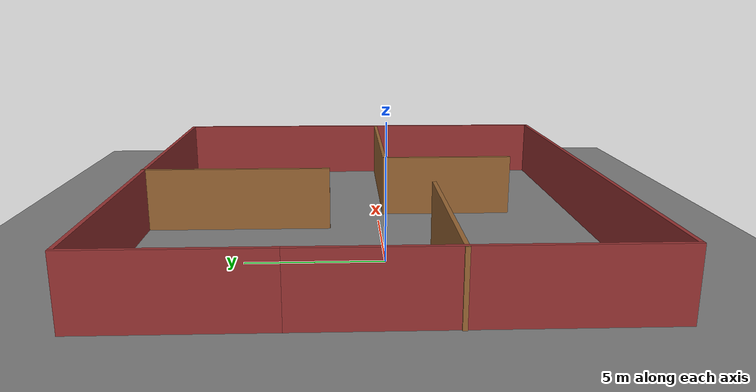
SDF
<sdf version='1.7'>
  <world name='default'>

    <plugin filename="gz-sim-physics-system" name="gz::sim::systems::Physics" />
      <render_engine>ogre2</render_engine>

    <plugin filename="gz-sim-user-commands-system" name="gz::sim::systems::UserCommands" />
    <plugin filename="gz-sim-scene-broadcaster-system" name="gz::sim::systems::SceneBroadcaster" />

    <light name='sun' type='directional'>
      <cast_shadows>1</cast_shadows>
      <pose>0 0 10 0 -0 0</pose>
      <diffuse>0.8 0.8 0.8 1</diffuse>
      <specular>0.2 0.2 0.2 1</specular>
      <attenuation>
        <range>1000</range>
        <constant>0.9</constant>
        <linear>0.01</linear>
        <quadratic>0.001</quadratic>
      </attenuation>
      <direction>-0.5 0.1 -0.9</direction>
      <spot>
        <inner_angle>0</inner_angle>
        <outer_angle>0</outer_angle>
        <falloff>0</falloff>
      </spot>
    </light>

    <model name='ground_plane'>
      <static>1</static>
      <link name='link'>
        <collision name='collision'>
          <geometry>
            <plane>
              <normal>0 0 1</normal>
              <size>100 100</size>
            </plane>
          </geometry>
          <surface>
            <friction>
              <ode>
                <mu>100</mu>
                <mu2>50</mu2>
              </ode>
              <torsional>
                <ode/>
              </torsional>
            </friction>
            <contact>
              <ode/>
            </contact>
            <bounce/>
          </surface>
          <max_contacts>10</max_contacts>
        </collision>
        <visual name='visual'>
          <cast_shadows>0</cast_shadows>
          <geometry>
            <plane>
              <normal>0 0 1</normal>
              <size>100 100</size>
            </plane>
          </geometry>
          <material>
            <ambient>0.5 0.5 0.5 1</ambient>
            <diffuse>0.5 0.5 0.5 1</diffuse>
            <specular>0.1 0.1 0.1 1</specular>
          </material>
        </visual>
        <self_collide>0</self_collide>
        <enable_wind>0</enable_wind>
        <kinematic>0</kinematic>
      </link>
    </model>

    <gravity>0 0 -9.8</gravity>
    <magnetic_field>6e-06 2.3e-05 -4.2e-05</magnetic_field>
    <atmosphere type='adiabatic'/>
    <physics type='ode'>
      <max_step_size>0.001</max_step_size>
      <real_time_factor>1</real_time_factor>
      <real_time_update_rate>1000</real_time_update_rate>
    </physics>
    <scene>
      <ambient>0.4 0.4 0.4 1</ambient>
      <background>0.7 0.7 0.7 1</background>
      <shadows>1</shadows>
    </scene>
    <audio>
      <device>default</device>
    </audio>
    <wind/>
    <spherical_coordinates>
      <surface_model>EARTH_WGS84</surface_model>
      <latitude_deg>0</latitude_deg>
      <longitude_deg>0</longitude_deg>
      <elevation>0</elevation>
      <heading_deg>0</heading_deg>
    </spherical_coordinates>

    <model name='walls'>
      <pose>4.38469 0.488384 0 0 -0 0</pose>
      <link name='Wall_1'>
        <collision name='Wall_1_Collision'>
          <geometry>
            <box><size>12.25 0.15 2.5</size></box>
          </geometry>
          <pose>0 0 1.25 0 -0 0</pose>
          <max_contacts>10</max_contacts>
          <surface>
            <contact><ode/></contact>
            <bounce/>
            <friction>
              <torsional><ode/></torsional>
              <ode/>
            </friction>
          </surface>
        </collision>
        <visual name='Wall_1_Visual'>
          <pose>0 0 1.25 0 -0 0</pose>
          <geometry>
            <box><size>12.25 0.15 2.5</size></box>
          </geometry>
          <material>
            <ambient>0.6 0.2 0.2 1</ambient>
            <diffuse>0.6 0.2 0.2 1</diffuse>
          </material>
          <meta><layer>0</layer></meta>
        </visual>
        <pose>-10.0126 -2.89923 0 0 -0 -1.5708</pose>
        <self_collide>0</self_collide>
        <enable_wind>0</enable_wind>
        <kinematic>0</kinematic>
      </link>

      <link name='Wall_11'>
        <collision name='Wall_11_Collision'>
          <geometry>
            <box><size>8.5 0.15 2.5</size></box>
          </geometry>
          <pose>0 0 1.25 0 -0 0</pose>
          <max_contacts>10</max_contacts>
          <surface>
            <contact><ode/></contact>
            <bounce/>
            <friction>
              <torsional><ode/></torsional>
              <ode/>
            </friction>
          </surface>
        </collision>
        <visual name='Wall_11_Visual'>
          <pose>0 0 1.25 0 -0 0</pose>
          <geometry>
            <box><size>8.5 0.15 2.5</size></box>
          </geometry>
          <material>
            <ambient>0.6 0.4 0.2 1</ambient>
            <diffuse>0.6 0.4 0.2 1</diffuse>
          </material>
          <meta><layer>0</layer></meta>
        </visual>
        <pose>5.90803 -0.788226 0 0 -0 3.14159</pose>
        <self_collide>0</self_collide>
        <enable_wind>0</enable_wind>
        <kinematic>0</kinematic>
      </link>

      <link name='Wall_12'>
        <collision name='Wall_12_Collision'>
          <geometry>
            <box><size>5.5 0.15 2.5</size></box>
          </geometry>
          <pose>0 0 1.25 0 -0 0</pose>
          <max_contacts>10</max_contacts>
          <surface>
            <contact><ode/></contact>
            <bounce/>
            <friction>
              <torsional><ode/></torsional>
              <ode/>
            </friction>
          </surface>
        </collision>
        <visual name='Wall_12_Visual'>
          <pose>0 0 1.25 0 -0 0</pose>
          <geometry>
            <box><size>5.5 0.15 2.5</size></box>
          </geometry>
          <material>
            <ambient>0.6 0.4 0.2 1</ambient>
            <diffuse>0.6 0.4 0.2 1</diffuse>
          </material>
          <meta><layer>0</layer></meta>
        </visual>
        <pose>1.73303 -3.46323 0 0 -0 -1.5708</pose>
        <self_collide>0</self_collide>
        <enable_wind>0</enable_wind>
        <kinematic>0</kinematic>
      </link>

      <link name='Wall_2'>
        <collision name='Wall_2_Collision'>
          <geometry>
            <box><size>20.25 0.15 2.5</size></box>
          </geometry>
          <pose>0 0 1.25 0 -0 0</pose>
          <max_contacts>10</max_contacts>
          <surface>
            <contact><ode/></contact>
            <bounce/>
            <friction>
              <torsional><ode/></torsional>
              <ode/>
            </friction>
          </surface>
        </collision>
        <visual name='Wall_2_Visual'>
          <pose>0 0 1.25 0 -0 0</pose>
          <geometry>
            <box><size>20.25 0.15 2.5</size></box>
          </geometry>
          <material>
            <ambient>0.6 0.2 0.2 1</ambient>
            <diffuse>0.6 0.2 0.2 1</diffuse>
          </material>
          <meta><layer>0</layer></meta>
        </visual>
        <pose>0.037417 -8.94923 0 0 -0 0</pose>
        <self_collide>0</self_collide>
        <enable_wind>0</enable_wind>
        <kinematic>0</kinematic>
      </link>

      <link name='Wall_3'>
        <collision name='Wall_3_Collision'>
          <geometry>
            <box><size>18 0.15 2.5</size></box>
          </geometry>
          <pose>0 0 1.25 0 -0 0</pose>
          <max_contacts>10</max_contacts>
          <surface>
            <contact><ode/></contact>
            <bounce/>
            <friction>
              <torsional><ode/></torsional>
              <ode/>
            </friction>
          </surface>
        </collision>
        <visual name='Wall_3_Visual'>
          <pose>0 0 1.25 0 -0 0</pose>
          <geometry>
            <box><size>18 0.15 2.5</size></box>
          </geometry>
          <material>
            <ambient>0.6 0.2 0.2 1</ambient>
            <diffuse>0.6 0.2 0.2 1</diffuse>
          </material>
          <meta><layer>0</layer></meta>
        </visual>
        <pose>10.0874 -0.024228 0 0 -0 1.5708</pose>
        <self_collide>0</self_collide>
        <enable_wind>0</enable_wind>
        <kinematic>0</kinematic>
      </link>

      <link name='Wall_4'>
        <collision name='Wall_4_Collision'>
          <geometry>
            <box><size>20.25 0.15 2.5</size></box>
          </geometry>
          <pose>0 0 1.25 0 -0 0</pose>
          <max_contacts>10</max_contacts>
          <surface>
            <contact><ode/></contact>
            <bounce/>
            <friction>
              <torsional><ode/></torsional>
              <ode/>
            </friction>
          </surface>
        </collision>
        <visual name='Wall_4_Visual'>
          <pose>0 0 1.25 0 -0 0</pose>
          <geometry>
            <box><size>20.25 0.15 2.5</size></box>
          </geometry>
          <material>
            <ambient>0.6 0.2 0.2 1</ambient>
            <diffuse>0.6 0.2 0.2 1</diffuse>
          </material>
          <meta><layer>0</layer></meta>
        </visual>
        <pose>0.037417 8.90077 0 0 -0 3.14159</pose>
        <self_collide>0</self_collide>
        <enable_wind>0</enable_wind>
        <kinematic>0</kinematic>
      </link>

      <link name='Wall_5'>
        <collision name='Wall_5_Collision'>
          <geometry>
            <box><size>6.25 0.15 2.5</size></box>
          </geometry>
          <pose>0 0 1.25 0 -0 0</pose>
          <max_contacts>10</max_contacts>
          <surface>
            <contact><ode/></contact>
            <bounce/>
            <friction>
              <torsional><ode/></torsional>
              <ode/>
            </friction>
          </surface>
        </collision>
        <visual name='Wall_5_Visual'>
          <pose>0 0 1.25 0 -0 0</pose>
          <geometry>
            <box><size>6.25 0.15 2.5</size></box>
          </geometry>
          <material>
            <ambient>0.6 0.2 0.2 1</ambient>
            <diffuse>0.6 0.2 0.2 1</diffuse>
          </material>
          <meta><layer>0</layer></meta>
        </visual>
        <pose>-10.0126 5.85077 0 0 -0 -1.5708</pose>
        <self_collide>0</self_collide>
        <enable_wind>0</enable_wind>
        <kinematic>0</kinematic>
      </link>

      <link name='Wall_7'>
        <collision name='Wall_7_Collision'>
          <geometry>
            <box><size>7.5 0.15 2.5</size></box>
          </geometry>
          <pose>0 0 1.25 0 -0 0</pose>
          <max_contacts>10</max_contacts>
          <surface>
            <contact><ode/></contact>
            <bounce/>
            <friction>
              <torsional><ode/></torsional>
              <ode/>
            </friction>
          </surface>
        </collision>
        <visual name='Wall_7_Visual'>
          <pose>0 0 1.25 0 -0 0</pose>
          <geometry>
            <box><size>7.5 0.15 2.5</size></box>
          </geometry>
          <material>
            <ambient>0.6 0.4 0.2 1</ambient>
            <diffuse>0.6 0.4 0.2 1</diffuse>
          </material>
          <meta><layer>0</layer></meta>
        </visual>
        <pose>-6.41242 -2.3933 0 0 -0 0</pose>
        <self_collide>0</self_collide>
        <enable_wind>0</enable_wind>
        <kinematic>0</kinematic>
      </link>

      <link name='Wall_9'>
        <collision name='Wall_9_Collision'>
          <geometry>
            <box><size>7.5 0.15 2.5</size></box>
          </geometry>
          <pose>0 0 1.25 0 -0 0</pose>
          <max_contacts>10</max_contacts>
          <surface>
            <contact><ode/></contact>
            <bounce/>
            <friction>
              <torsional><ode/></torsional>
              <ode/>
            </friction>
          </surface>
        </collision>
        <visual name='Wall_9_Visual'>
          <pose>0 0 1.25 0 -0 0</pose>
          <geometry>
            <box><size>7.5 0.15 2.5</size></box>
          </geometry>
          <material>
            <ambient>0.6 0.4 0.2 1</ambient>
            <diffuse>0.6 0.4 0.2 1</diffuse>
          </material>
          <meta><layer>0</layer></meta>
        </visual>
        <pose>-0.29646 5.27423 0 0 -0 -1.5708</pose>
        <self_collide>0</self_collide>
        <enable_wind>0</enable_wind>
        <kinematic>0</kinematic>
      </link>
      <static>1</static>
    </model>
  </world>
</sdf>
